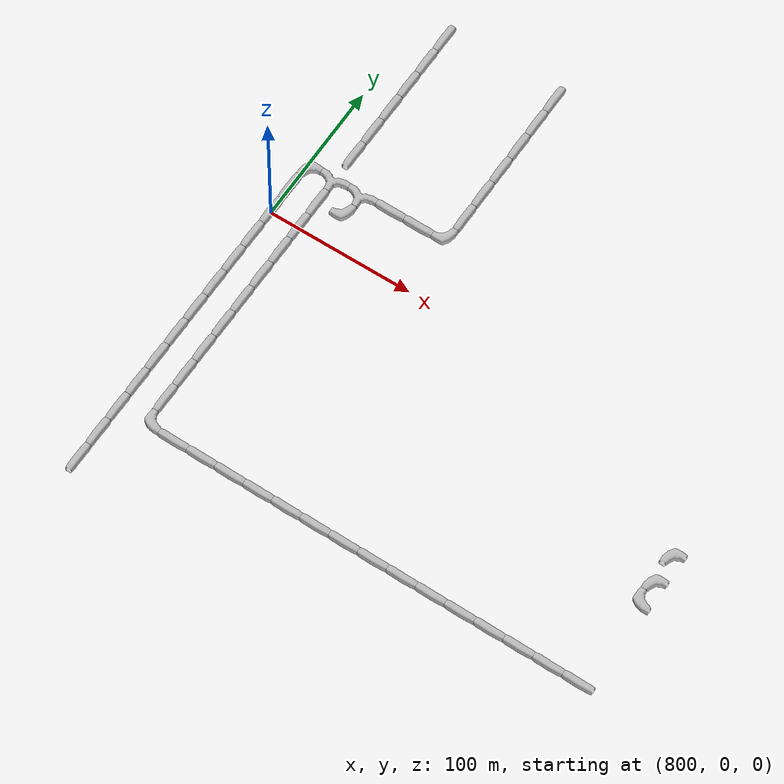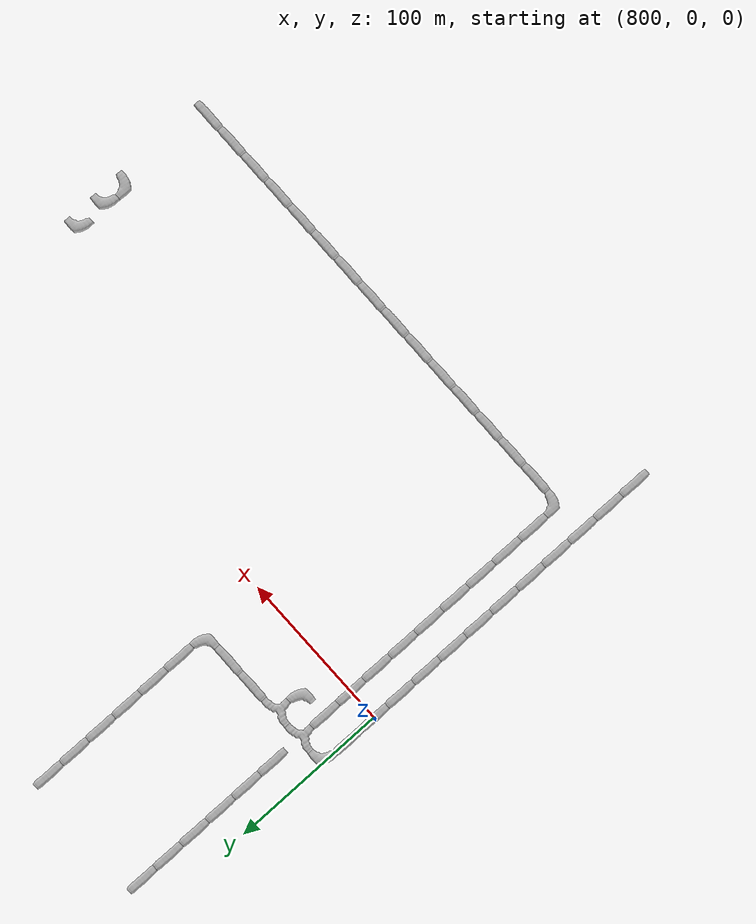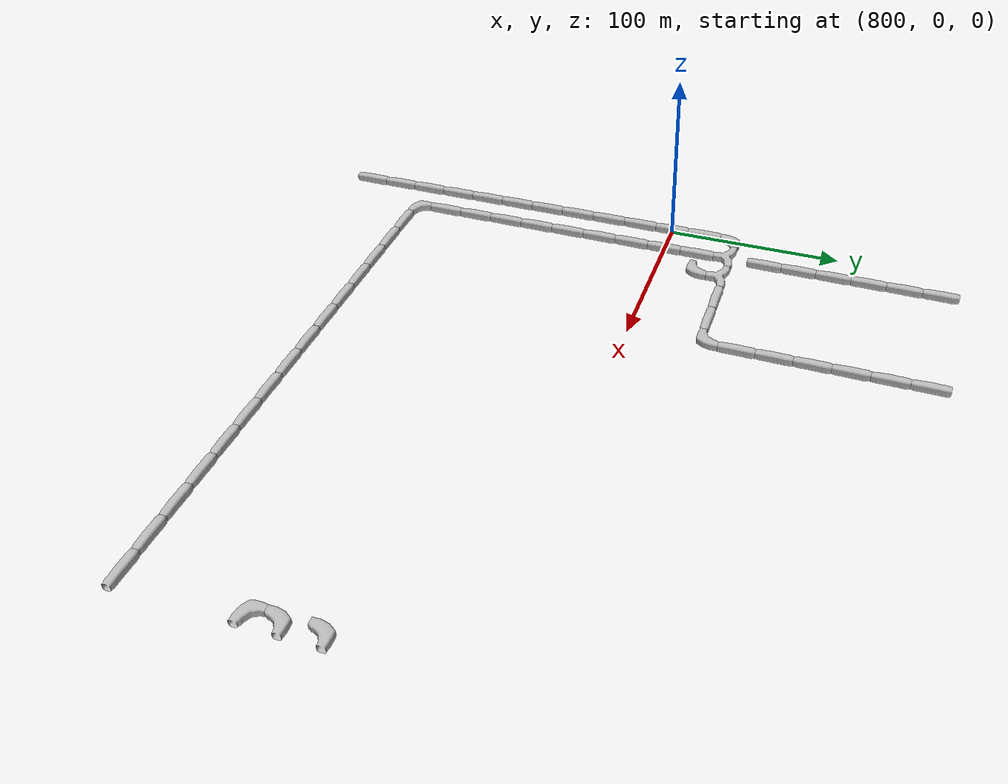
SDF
<sdf version="1.6">
 <world name="cave_32000_8">
  <include>
   <static>true</static>
   <name>cave_40_-10</name>
   <pose>800 -200 0 0 0 0.0</pose>
   <uri>model://cave_straight_20m</uri>
  </include>
  <include>
   <static>true</static>
   <name>cave_40_-9</name>
   <pose>800 -180 0 0 0 0.0</pose>
   <uri>model://cave_straight_20m</uri>
  </include>
  <include>
   <static>true</static>
   <name>cave_40_-8</name>
   <pose>800 -160 0 0 0 0.0</pose>
   <uri>model://cave_straight_20m</uri>
  </include>
  <include>
   <static>true</static>
   <name>cave_40_-7</name>
   <pose>800 -140 0 0 0 0.0</pose>
   <uri>model://cave_straight_20m</uri>
  </include>
  <include>
   <static>true</static>
   <name>cave_40_-6</name>
   <pose>800 -120 0 0 0 0.0</pose>
   <uri>model://cave_straight_20m</uri>
  </include>
  <include>
   <static>true</static>
   <name>cave_40_-5</name>
   <pose>800 -100 0 0 0 0.0</pose>
   <uri>model://cave_straight_20m</uri>
  </include>
  <include>
   <static>true</static>
   <name>cave_40_-4</name>
   <pose>800 -80 0 0 0 0.0</pose>
   <uri>model://cave_straight_20m</uri>
  </include>
  <include>
   <static>true</static>
   <name>cave_40_-3</name>
   <pose>800 -60 0 0 0 0.0</pose>
   <uri>model://cave_straight_20m</uri>
  </include>
  <include>
   <static>true</static>
   <name>cave_40_-2</name>
   <pose>800 -40 0 0 0 0.0</pose>
   <uri>model://cave_straight_20m</uri>
  </include>
  <include>
   <static>true</static>
   <name>cave_40_-1</name>
   <pose>800 -20 0 0 0 0.0</pose>
   <uri>model://cave_straight_20m</uri>
  </include>
  <include>
   <static>true</static>
   <name>cave_40_0</name>
   <pose>800 0 0 0 0 0.0</pose>
   <uri>model://cave_straight_20m</uri>
  </include>
  <include>
   <static>true</static>
   <name>cave_40_1</name>
   <pose>800 20 0 0 0 0.0</pose>
   <uri>model://cave_straight_20m</uri>
  </include>
  <include>
   <static>true</static>
   <name>cave_40_2</name>
   <pose>800 40 0 0 0 -1.5707963267948966</pose>
   <uri>model://cave_L_20m</uri>
  </include>
  <include>
   <static>true</static>
   <name>cave_41_2</name>
   <pose>820 40 0 0 0 3.141592653589793</pose>
   <uri>model://cave_3way_20m</uri>
  </include>
  <include>
   <static>true</static>
   <name>cave_42_2</name>
   <pose>840 40 0 0 0 3.141592653589793</pose>
   <uri>model://cave_3way_20m</uri>
  </include>
  <include>
   <static>true</static>
   <name>cave_43_2</name>
   <pose>860 40 0 0 0 1.5707963267948966</pose>
   <uri>model://cave_straight_20m</uri>
  </include>
  <include>
   <static>true</static>
   <name>cave_44_2</name>
   <pose>880 40 0 0 0 1.5707963267948966</pose>
   <uri>model://cave_straight_20m</uri>
  </include>
  <include>
   <static>true</static>
   <name>cave_45_2</name>
   <pose>900 40 0 0 0 1.5707963267948966</pose>
   <uri>model://cave_L_20m</uri>
  </include>
  <include>
   <static>true</static>
   <name>cave_45_3</name>
   <pose>900 60 0 0 0 0.0</pose>
   <uri>model://cave_straight_20m</uri>
  </include>
  <include>
   <static>true</static>
   <name>cave_45_4</name>
   <pose>900 80 0 0 0 0.0</pose>
   <uri>model://cave_straight_20m</uri>
  </include>
  <include>
   <static>true</static>
   <name>cave_45_5</name>
   <pose>900 100 0 0 0 0.0</pose>
   <uri>model://cave_straight_20m</uri>
  </include>
  <include>
   <static>true</static>
   <name>cave_45_6</name>
   <pose>900 120 0 0 0 0.0</pose>
   <uri>model://cave_straight_20m</uri>
  </include>
  <include>
   <static>true</static>
   <name>cave_45_7</name>
   <pose>900 140 0 0 0 0.0</pose>
   <uri>model://cave_straight_20m</uri>
  </include>
  <include>
   <static>true</static>
   <name>cave_45_8</name>
   <pose>900 160 0 0 0 0.0</pose>
   <uri>model://cave_straight_20m</uri>
  </include>
  <include>
   <static>true</static>
   <name>cave_41_8</name>
   <pose>820 160 0 0 0 0.0</pose>
   <uri>model://cave_straight_20m</uri>
  </include>
  <include>
   <static>true</static>
   <name>cave_41_7</name>
   <pose>820 140 0 0 0 0.0</pose>
   <uri>model://cave_straight_20m</uri>
  </include>
  <include>
   <static>true</static>
   <name>cave_41_6</name>
   <pose>820 120 0 0 0 0.0</pose>
   <uri>model://cave_straight_20m</uri>
  </include>
  <include>
   <static>true</static>
   <name>cave_41_5</name>
   <pose>820 100 0 0 0 0.0</pose>
   <uri>model://cave_straight_20m</uri>
  </include>
  <include>
   <static>true</static>
   <name>cave_41_4</name>
   <pose>820 80 0 0 0 0.0</pose>
   <uri>model://cave_straight_20m</uri>
  </include>
  <include>
   <static>true</static>
   <name>cave_41_3</name>
   <pose>820 60 0 0 0 0.0</pose>
   <uri>model://cave_straight_20m</uri>
  </include>
  <include>
   <static>true</static>
   <name>cave_42_1</name>
   <pose>840 20 0 0 0 1.5707963267948966</pose>
   <uri>model://cave_L_20m</uri>
  </include>
  <include>
   <static>true</static>
   <name>cave_41_1</name>
   <pose>820 20 0 0 0 0.0</pose>
   <uri>model://cave_straight_20m</uri>
  </include>
  <include>
   <static>true</static>
   <name>cave_41_0</name>
   <pose>820 0 0 0 0 0.0</pose>
   <uri>model://cave_straight_20m</uri>
  </include>
  <include>
   <static>true</static>
   <name>cave_41_-1</name>
   <pose>820 -20 0 0 0 0.0</pose>
   <uri>model://cave_straight_20m</uri>
  </include>
  <include>
   <static>true</static>
   <name>cave_41_-2</name>
   <pose>820 -40 0 0 0 0.0</pose>
   <uri>model://cave_straight_20m</uri>
  </include>
  <include>
   <static>true</static>
   <name>cave_41_-3</name>
   <pose>820 -60 0 0 0 0.0</pose>
   <uri>model://cave_straight_20m</uri>
  </include>
  <include>
   <static>true</static>
   <name>cave_41_-4</name>
   <pose>820 -80 0 0 0 0.0</pose>
   <uri>model://cave_straight_20m</uri>
  </include>
  <include>
   <static>true</static>
   <name>cave_41_-5</name>
   <pose>820 -100 0 0 0 0.0</pose>
   <uri>model://cave_straight_20m</uri>
  </include>
  <include>
   <static>true</static>
   <name>cave_41_-6</name>
   <pose>820 -120 0 0 0 0.0</pose>
   <uri>model://cave_straight_20m</uri>
  </include>
  <include>
   <static>true</static>
   <name>cave_41_-7</name>
   <pose>820 -140 0 0 0 0.0</pose>
   <uri>model://cave_straight_20m</uri>
  </include>
  <include>
   <static>true</static>
   <name>cave_41_-8</name>
   <pose>820 -160 0 0 0 0.0</pose>
   <uri>model://cave_L_20m</uri>
  </include>
  <include>
   <static>true</static>
   <name>cave_42_-8</name>
   <pose>840 -160 0 0 0 1.5707963267948966</pose>
   <uri>model://cave_straight_20m</uri>
  </include>
  <include>
   <static>true</static>
   <name>cave_43_-8</name>
   <pose>860 -160 0 0 0 1.5707963267948966</pose>
   <uri>model://cave_straight_20m</uri>
  </include>
  <include>
   <static>true</static>
   <name>cave_44_-8</name>
   <pose>880 -160 0 0 0 1.5707963267948966</pose>
   <uri>model://cave_straight_20m</uri>
  </include>
  <include>
   <static>true</static>
   <name>cave_45_-8</name>
   <pose>900 -160 0 0 0 1.5707963267948966</pose>
   <uri>model://cave_straight_20m</uri>
  </include>
  <include>
   <static>true</static>
   <name>cave_46_-8</name>
   <pose>920 -160 0 0 0 1.5707963267948966</pose>
   <uri>model://cave_straight_20m</uri>
  </include>
  <include>
   <static>true</static>
   <name>cave_47_-8</name>
   <pose>940 -160 0 0 0 1.5707963267948966</pose>
   <uri>model://cave_straight_20m</uri>
  </include>
  <include>
   <static>true</static>
   <name>cave_48_-8</name>
   <pose>960 -160 0 0 0 1.5707963267948966</pose>
   <uri>model://cave_straight_20m</uri>
  </include>
  <include>
   <static>true</static>
   <name>cave_49_-8</name>
   <pose>980 -160 0 0 0 1.5707963267948966</pose>
   <uri>model://cave_straight_20m</uri>
  </include>
  <include>
   <static>true</static>
   <name>cave_50_-8</name>
   <pose>1000 -160 0 0 0 1.5707963267948966</pose>
   <uri>model://cave_straight_20m</uri>
  </include>
  <include>
   <static>true</static>
   <name>cave_51_-8</name>
   <pose>1020 -160 0 0 0 1.5707963267948966</pose>
   <uri>model://cave_straight_20m</uri>
  </include>
  <include>
   <static>true</static>
   <name>cave_52_-8</name>
   <pose>1040 -160 0 0 0 1.5707963267948966</pose>
   <uri>model://cave_straight_20m</uri>
  </include>
  <include>
   <static>true</static>
   <name>cave_53_-8</name>
   <pose>1060 -160 0 0 0 1.5707963267948966</pose>
   <uri>model://cave_straight_20m</uri>
  </include>
  <include>
   <static>true</static>
   <name>cave_54_-8</name>
   <pose>1080 -160 0 0 0 1.5707963267948966</pose>
   <uri>model://cave_straight_20m</uri>
  </include>
  <include>
   <static>true</static>
   <name>cave_55_-8</name>
   <pose>1100 -160 0 0 0 1.5707963267948966</pose>
   <uri>model://cave_straight_20m</uri>
  </include>
  <include>
   <static>true</static>
   <name>cave_56_-8</name>
   <pose>1120 -160 0 0 0 1.5707963267948966</pose>
   <uri>model://cave_straight_20m</uri>
  </include>
  <include>
   <static>true</static>
   <name>cave_56_-5</name>
   <pose>1120 -100 0 0 0 0.0</pose>
   <uri>model://cave_L_20m</uri>
  </include>
  <include>
   <static>true</static>
   <name>cave_56_-4</name>
   <pose>1120 -80 0 0 0 -1.5707963267948966</pose>
   <uri>model://cave_L_20m</uri>
  </include>
  <include>
   <static>true</static>
   <name>cave_56_-3</name>
   <pose>1120 -60 0 0 0 -1.5707963267948966</pose>
   <uri>model://cave_L_20m</uri>
  </include>
 </world>
</sdf>
